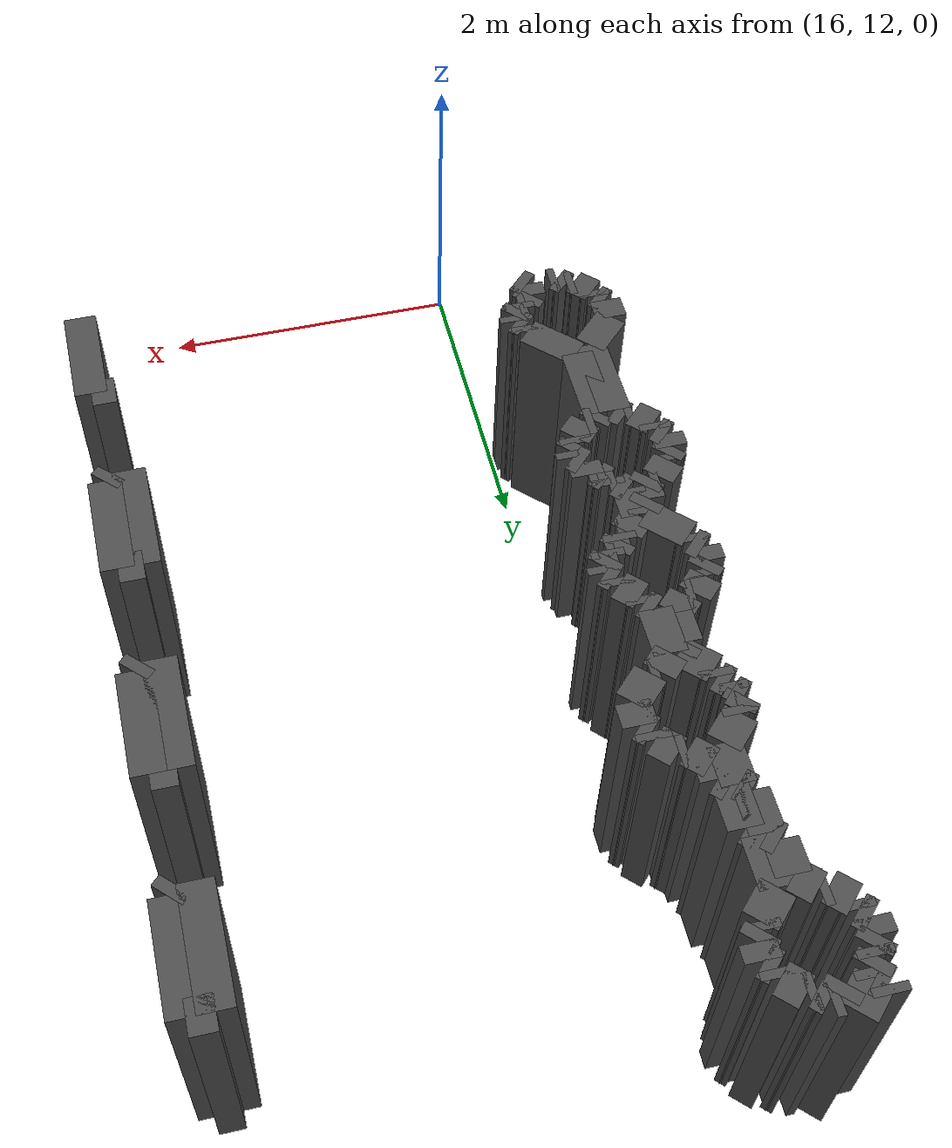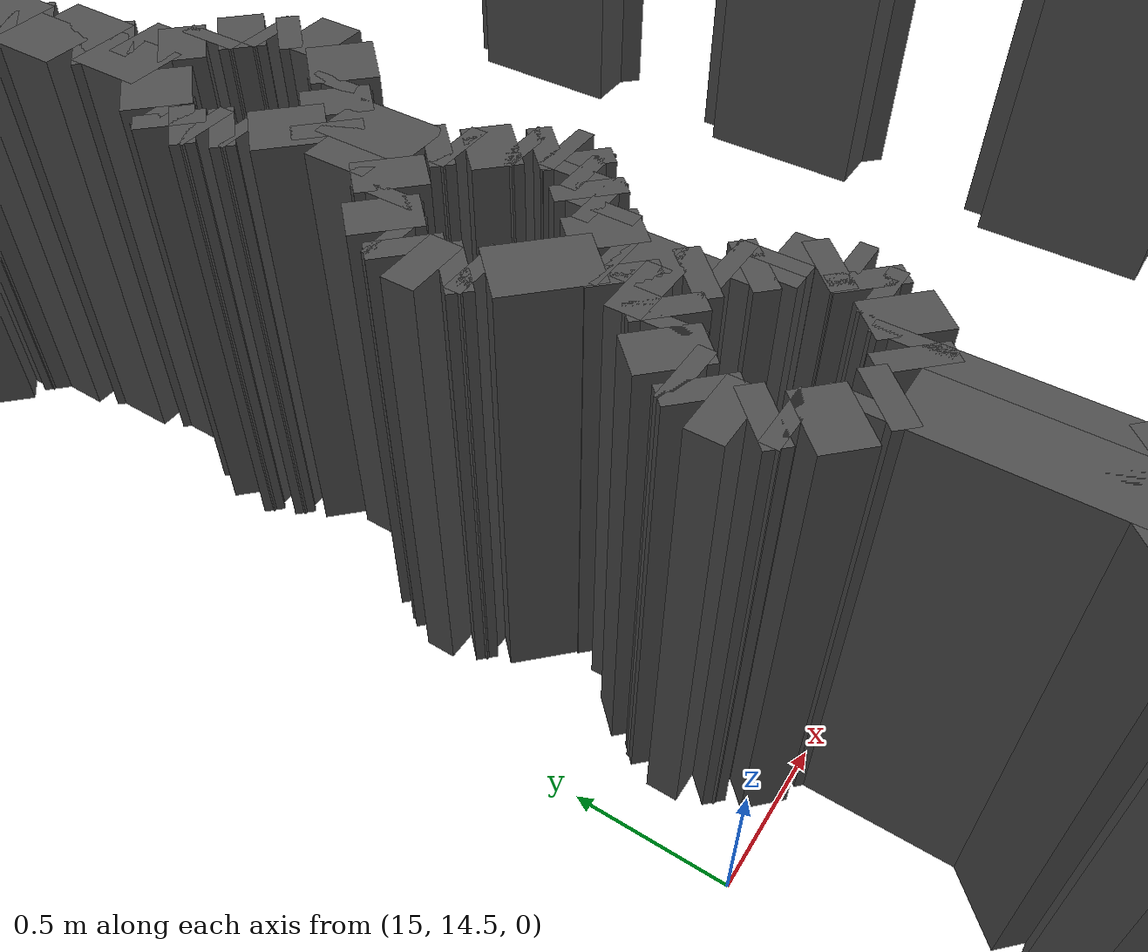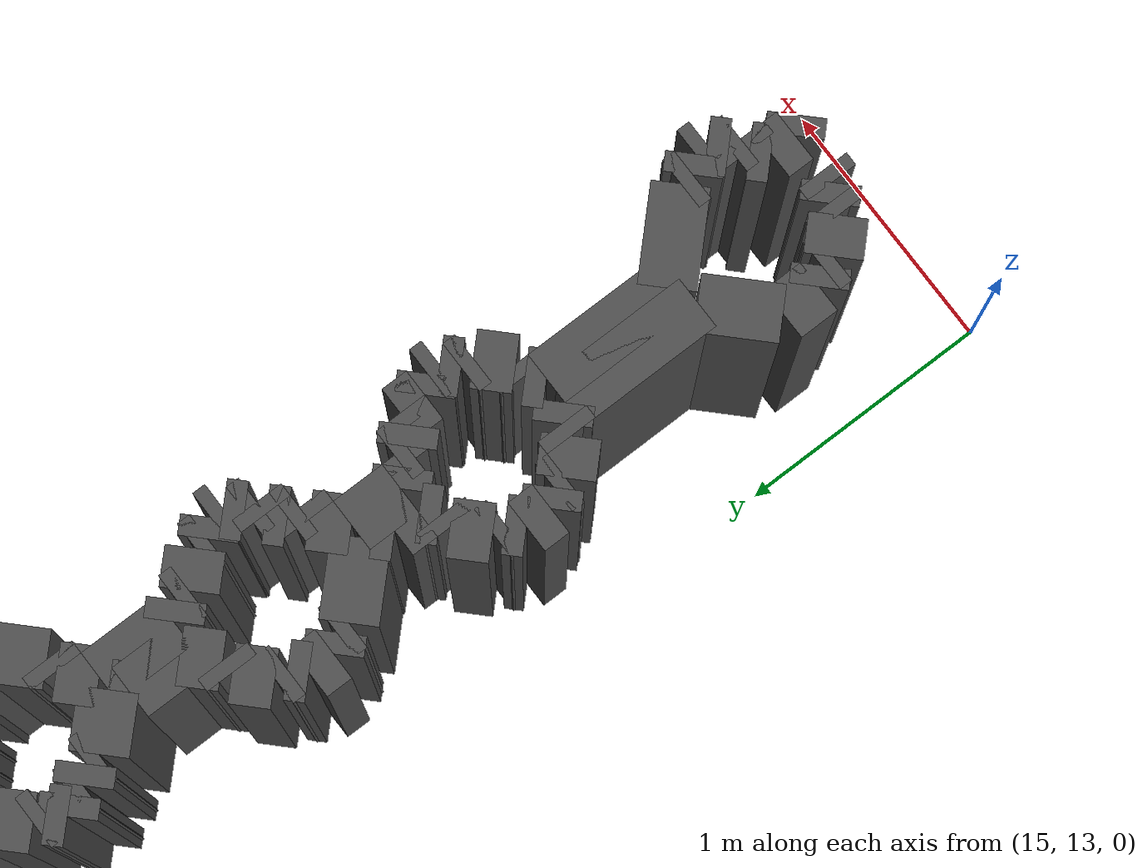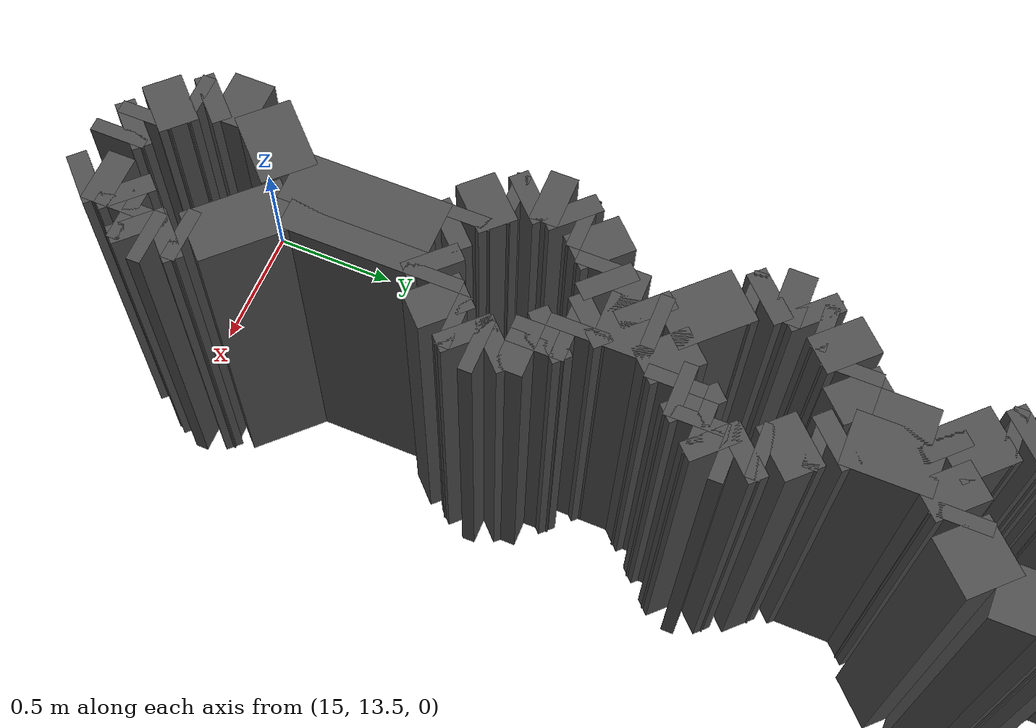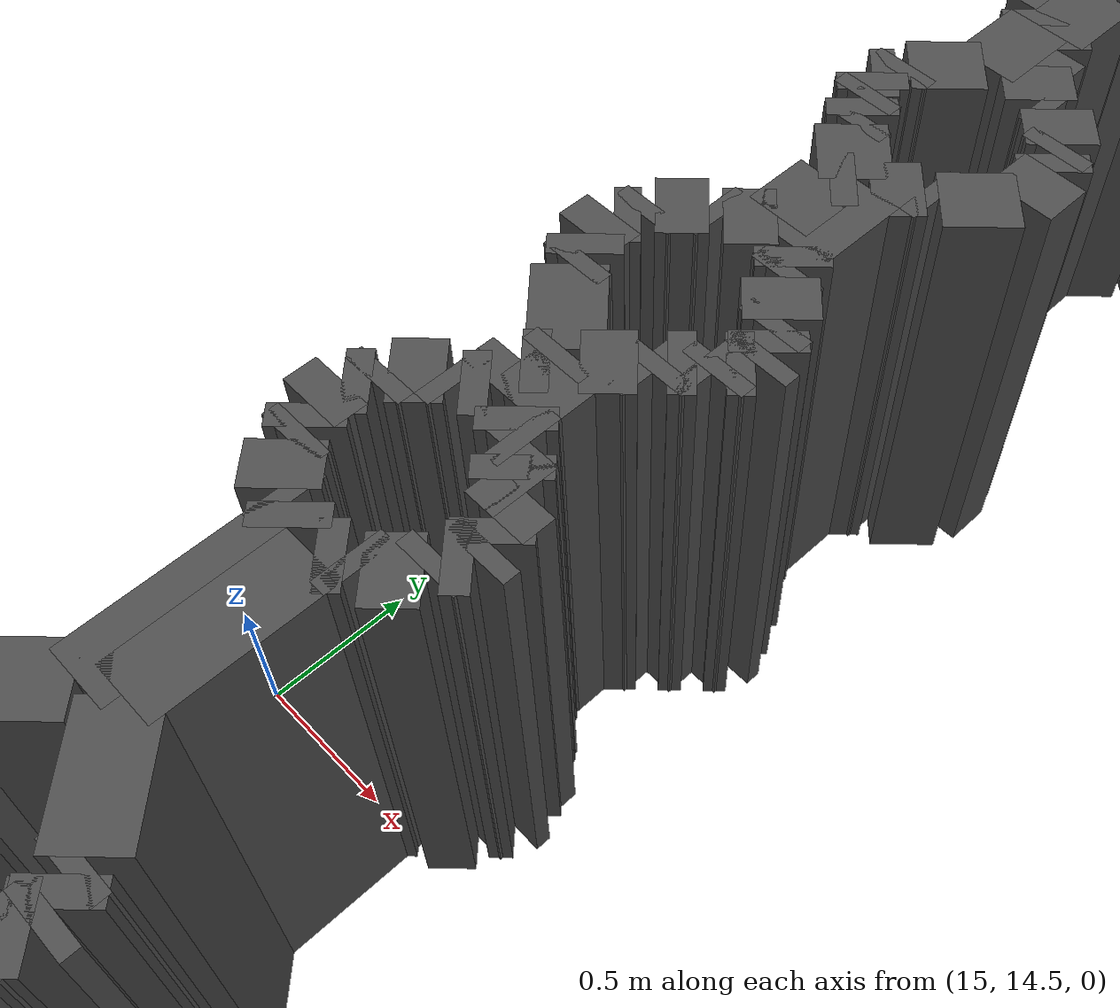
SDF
<sdf version="1.9">
 <model name="generated_walls">
  <static>true</static>
  <link name="wall_120_0">
   <pose>18.450 17.350 0.75 0 0 1.571</pose>
   <collision name="collision"><geometry><box><size>0.700 0.2 1.5</size></box></geometry></collision>
   <visual name="visual">
    <geometry><box><size>0.700 0.2 1.5</size></box></geometry>
    <material><ambient>0.3 0.3 0.3 1</ambient></material>
   </visual>
  </link>
  <link name="wall_120_1">
   <pose>18.525 17.700 0.75 0 0 0.000</pose>
   <collision name="collision"><geometry><box><size>0.150 0.2 1.5</size></box></geometry></collision>
   <visual name="visual">
    <geometry><box><size>0.150 0.2 1.5</size></box></geometry>
    <material><ambient>0.3 0.3 0.3 1</ambient></material>
   </visual>
  </link>
  <link name="wall_120_2">
   <pose>18.600 17.375 0.75 0 0 -1.571</pose>
   <collision name="collision"><geometry><box><size>0.650 0.2 1.5</size></box></geometry></collision>
   <visual name="visual">
    <geometry><box><size>0.650 0.2 1.5</size></box></geometry>
    <material><ambient>0.3 0.3 0.3 1</ambient></material>
   </visual>
  </link>
  <link name="wall_120_3">
   <pose>18.575 17.025 0.75 0 0 -2.356</pose>
   <collision name="collision"><geometry><box><size>0.071 0.2 1.5</size></box></geometry></collision>
   <visual name="visual">
    <geometry><box><size>0.071 0.2 1.5</size></box></geometry>
    <material><ambient>0.3 0.3 0.3 1</ambient></material>
   </visual>
  </link>
  <link name="wall_127_0">
   <pose>18.450 16.000 0.75 0 0 1.571</pose>
   <collision name="collision"><geometry><box><size>0.700 0.2 1.5</size></box></geometry></collision>
   <visual name="visual">
    <geometry><box><size>0.700 0.2 1.5</size></box></geometry>
    <material><ambient>0.3 0.3 0.3 1</ambient></material>
   </visual>
  </link>
  <link name="wall_127_1">
   <pose>18.525 16.350 0.75 0 0 0.000</pose>
   <collision name="collision"><geometry><box><size>0.150 0.2 1.5</size></box></geometry></collision>
   <visual name="visual">
    <geometry><box><size>0.150 0.2 1.5</size></box></geometry>
    <material><ambient>0.3 0.3 0.3 1</ambient></material>
   </visual>
  </link>
  <link name="wall_127_2">
   <pose>18.600 16.025 0.75 0 0 -1.571</pose>
   <collision name="collision"><geometry><box><size>0.650 0.2 1.5</size></box></geometry></collision>
   <visual name="visual">
    <geometry><box><size>0.650 0.2 1.5</size></box></geometry>
    <material><ambient>0.3 0.3 0.3 1</ambient></material>
   </visual>
  </link>
  <link name="wall_127_3">
   <pose>18.575 15.675 0.75 0 0 -2.356</pose>
   <collision name="collision"><geometry><box><size>0.071 0.2 1.5</size></box></geometry></collision>
   <visual name="visual">
    <geometry><box><size>0.071 0.2 1.5</size></box></geometry>
    <material><ambient>0.3 0.3 0.3 1</ambient></material>
   </visual>
  </link>
  <link name="wall_131_0">
   <pose>18.450 14.650 0.75 0 0 1.571</pose>
   <collision name="collision"><geometry><box><size>0.700 0.2 1.5</size></box></geometry></collision>
   <visual name="visual">
    <geometry><box><size>0.700 0.2 1.5</size></box></geometry>
    <material><ambient>0.3 0.3 0.3 1</ambient></material>
   </visual>
  </link>
  <link name="wall_131_1">
   <pose>18.525 15.000 0.75 0 0 0.000</pose>
   <collision name="collision"><geometry><box><size>0.150 0.2 1.5</size></box></geometry></collision>
   <visual name="visual">
    <geometry><box><size>0.150 0.2 1.5</size></box></geometry>
    <material><ambient>0.3 0.3 0.3 1</ambient></material>
   </visual>
  </link>
  <link name="wall_131_2">
   <pose>18.600 14.675 0.75 0 0 -1.571</pose>
   <collision name="collision"><geometry><box><size>0.650 0.2 1.5</size></box></geometry></collision>
   <visual name="visual">
    <geometry><box><size>0.650 0.2 1.5</size></box></geometry>
    <material><ambient>0.3 0.3 0.3 1</ambient></material>
   </visual>
  </link>
  <link name="wall_131_3">
   <pose>18.575 14.325 0.75 0 0 -2.356</pose>
   <collision name="collision"><geometry><box><size>0.071 0.2 1.5</size></box></geometry></collision>
   <visual name="visual">
    <geometry><box><size>0.071 0.2 1.5</size></box></geometry>
    <material><ambient>0.3 0.3 0.3 1</ambient></material>
   </visual>
  </link>
  <link name="wall_135_1">
   <pose>18.525 13.650 0.75 0 0 0.000</pose>
   <collision name="collision"><geometry><box><size>0.150 0.2 1.5</size></box></geometry></collision>
   <visual name="visual">
    <geometry><box><size>0.150 0.2 1.5</size></box></geometry>
    <material><ambient>0.3 0.3 0.3 1</ambient></material>
   </visual>
  </link>
  <link name="wall_135_2">
   <pose>18.600 13.325 0.75 0 0 -1.571</pose>
   <collision name="collision"><geometry><box><size>0.650 0.2 1.5</size></box></geometry></collision>
   <visual name="visual">
    <geometry><box><size>0.650 0.2 1.5</size></box></geometry>
    <material><ambient>0.3 0.3 0.3 1</ambient></material>
   </visual>
  </link>
  <link name="wall_161_1705">
   <pose>15.575 13.350 0.75 0 0 3.142</pose>
   <collision name="collision"><geometry><box><size>0.050 0.2 1.5</size></box></geometry></collision>
   <visual name="visual">
    <geometry><box><size>0.050 0.2 1.5</size></box></geometry>
    <material><ambient>0.3 0.3 0.3 1</ambient></material>
   </visual>
  </link>
  <link name="wall_161_1706">
   <pose>15.525 13.375 0.75 0 0 2.356</pose>
   <collision name="collision"><geometry><box><size>0.071 0.2 1.5</size></box></geometry></collision>
   <visual name="visual">
    <geometry><box><size>0.071 0.2 1.5</size></box></geometry>
    <material><ambient>0.3 0.3 0.3 1</ambient></material>
   </visual>
  </link>
  <link name="wall_161_1707">
   <pose>15.475 13.400 0.75 0 0 3.142</pose>
   <collision name="collision"><geometry><box><size>0.050 0.2 1.5</size></box></geometry></collision>
   <visual name="visual">
    <geometry><box><size>0.050 0.2 1.5</size></box></geometry>
    <material><ambient>0.3 0.3 0.3 1</ambient></material>
   </visual>
  </link>
  <link name="wall_161_1708">
   <pose>15.400 13.450 0.75 0 0 2.356</pose>
   <collision name="collision"><geometry><box><size>0.141 0.2 1.5</size></box></geometry></collision>
   <visual name="visual">
    <geometry><box><size>0.141 0.2 1.5</size></box></geometry>
    <material><ambient>0.3 0.3 0.3 1</ambient></material>
   </visual>
  </link>
  <link name="wall_161_1709">
   <pose>15.350 13.525 0.75 0 0 1.571</pose>
   <collision name="collision"><geometry><box><size>0.050 0.2 1.5</size></box></geometry></collision>
   <visual name="visual">
    <geometry><box><size>0.050 0.2 1.5</size></box></geometry>
    <material><ambient>0.3 0.3 0.3 1</ambient></material>
   </visual>
  </link>
  <link name="wall_161_1710">
   <pose>15.325 13.575 0.75 0 0 2.356</pose>
   <collision name="collision"><geometry><box><size>0.071 0.2 1.5</size></box></geometry></collision>
   <visual name="visual">
    <geometry><box><size>0.071 0.2 1.5</size></box></geometry>
    <material><ambient>0.3 0.3 0.3 1</ambient></material>
   </visual>
  </link>
  <link name="wall_161_1711">
   <pose>15.300 13.675 0.75 0 0 1.571</pose>
   <collision name="collision"><geometry><box><size>0.150 0.2 1.5</size></box></geometry></collision>
   <visual name="visual">
    <geometry><box><size>0.150 0.2 1.5</size></box></geometry>
    <material><ambient>0.3 0.3 0.3 1</ambient></material>
   </visual>
  </link>
  <link name="wall_161_1712">
   <pose>15.400 13.850 0.75 0 0 0.785</pose>
   <collision name="collision"><geometry><box><size>0.283 0.2 1.5</size></box></geometry></collision>
   <visual name="visual">
    <geometry><box><size>0.283 0.2 1.5</size></box></geometry>
    <material><ambient>0.3 0.3 0.3 1</ambient></material>
   </visual>
  </link>
  <link name="wall_161_1713">
   <pose>15.500 14.225 0.75 0 0 1.571</pose>
   <collision name="collision"><geometry><box><size>0.550 0.2 1.5</size></box></geometry></collision>
   <visual name="visual">
    <geometry><box><size>0.550 0.2 1.5</size></box></geometry>
    <material><ambient>0.3 0.3 0.3 1</ambient></material>
   </visual>
  </link>
  <link name="wall_161_1714">
   <pose>15.475 14.525 0.75 0 0 2.356</pose>
   <collision name="collision"><geometry><box><size>0.071 0.2 1.5</size></box></geometry></collision>
   <visual name="visual">
    <geometry><box><size>0.071 0.2 1.5</size></box></geometry>
    <material><ambient>0.3 0.3 0.3 1</ambient></material>
   </visual>
  </link>
  <link name="wall_161_1715">
   <pose>15.425 14.550 0.75 0 0 3.142</pose>
   <collision name="collision"><geometry><box><size>0.050 0.2 1.5</size></box></geometry></collision>
   <visual name="visual">
    <geometry><box><size>0.050 0.2 1.5</size></box></geometry>
    <material><ambient>0.3 0.3 0.3 1</ambient></material>
   </visual>
  </link>
  <link name="wall_161_1716">
   <pose>15.350 14.600 0.75 0 0 2.356</pose>
   <collision name="collision"><geometry><box><size>0.141 0.2 1.5</size></box></geometry></collision>
   <visual name="visual">
    <geometry><box><size>0.141 0.2 1.5</size></box></geometry>
    <material><ambient>0.3 0.3 0.3 1</ambient></material>
   </visual>
  </link>
  <link name="wall_161_1717">
   <pose>15.300 14.675 0.75 0 0 1.571</pose>
   <collision name="collision"><geometry><box><size>0.050 0.2 1.5</size></box></geometry></collision>
   <visual name="visual">
    <geometry><box><size>0.050 0.2 1.5</size></box></geometry>
    <material><ambient>0.3 0.3 0.3 1</ambient></material>
   </visual>
  </link>
  <link name="wall_161_1718">
   <pose>15.275 14.725 0.75 0 0 2.356</pose>
   <collision name="collision"><geometry><box><size>0.071 0.2 1.5</size></box></geometry></collision>
   <visual name="visual">
    <geometry><box><size>0.071 0.2 1.5</size></box></geometry>
    <material><ambient>0.3 0.3 0.3 1</ambient></material>
   </visual>
  </link>
  <link name="wall_161_1719">
   <pose>15.250 14.800 0.75 0 0 1.571</pose>
   <collision name="collision"><geometry><box><size>0.100 0.2 1.5</size></box></geometry></collision>
   <visual name="visual">
    <geometry><box><size>0.100 0.2 1.5</size></box></geometry>
    <material><ambient>0.3 0.3 0.3 1</ambient></material>
   </visual>
  </link>
  <link name="wall_161_1720">
   <pose>15.275 14.875 0.75 0 0 0.785</pose>
   <collision name="collision"><geometry><box><size>0.071 0.2 1.5</size></box></geometry></collision>
   <visual name="visual">
    <geometry><box><size>0.071 0.2 1.5</size></box></geometry>
    <material><ambient>0.3 0.3 0.3 1</ambient></material>
   </visual>
  </link>
  <link name="wall_161_1721">
   <pose>15.300 14.925 0.75 0 0 1.571</pose>
   <collision name="collision"><geometry><box><size>0.050 0.2 1.5</size></box></geometry></collision>
   <visual name="visual">
    <geometry><box><size>0.050 0.2 1.5</size></box></geometry>
    <material><ambient>0.3 0.3 0.3 1</ambient></material>
   </visual>
  </link>
  <link name="wall_161_1722">
   <pose>15.350 15.000 0.75 0 0 0.785</pose>
   <collision name="collision"><geometry><box><size>0.141 0.2 1.5</size></box></geometry></collision>
   <visual name="visual">
    <geometry><box><size>0.141 0.2 1.5</size></box></geometry>
    <material><ambient>0.3 0.3 0.3 1</ambient></material>
   </visual>
  </link>
  <link name="wall_161_1723">
   <pose>15.425 15.050 0.75 0 0 0.000</pose>
   <collision name="collision"><geometry><box><size>0.050 0.2 1.5</size></box></geometry></collision>
   <visual name="visual">
    <geometry><box><size>0.050 0.2 1.5</size></box></geometry>
    <material><ambient>0.3 0.3 0.3 1</ambient></material>
   </visual>
  </link>
  <link name="wall_161_1724">
   <pose>15.475 15.075 0.75 0 0 0.785</pose>
   <collision name="collision"><geometry><box><size>0.071 0.2 1.5</size></box></geometry></collision>
   <visual name="visual">
    <geometry><box><size>0.071 0.2 1.5</size></box></geometry>
    <material><ambient>0.3 0.3 0.3 1</ambient></material>
   </visual>
  </link>
  <link name="wall_161_1725">
   <pose>15.500 15.150 0.75 0 0 1.571</pose>
   <collision name="collision"><geometry><box><size>0.100 0.2 1.5</size></box></geometry></collision>
   <visual name="visual">
    <geometry><box><size>0.100 0.2 1.5</size></box></geometry>
    <material><ambient>0.3 0.3 0.3 1</ambient></material>
   </visual>
  </link>
  <link name="wall_161_1726">
   <pose>15.525 15.225 0.75 0 0 0.785</pose>
   <collision name="collision"><geometry><box><size>0.071 0.2 1.5</size></box></geometry></collision>
   <visual name="visual">
    <geometry><box><size>0.071 0.2 1.5</size></box></geometry>
    <material><ambient>0.3 0.3 0.3 1</ambient></material>
   </visual>
  </link>
  <link name="wall_161_1727">
   <pose>15.550 15.275 0.75 0 0 1.571</pose>
   <collision name="collision"><geometry><box><size>0.050 0.2 1.5</size></box></geometry></collision>
   <visual name="visual">
    <geometry><box><size>0.050 0.2 1.5</size></box></geometry>
    <material><ambient>0.3 0.3 0.3 1</ambient></material>
   </visual>
  </link>
  <link name="wall_161_1728">
   <pose>15.450 15.400 0.75 0 0 2.356</pose>
   <collision name="collision"><geometry><box><size>0.283 0.2 1.5</size></box></geometry></collision>
   <visual name="visual">
    <geometry><box><size>0.283 0.2 1.5</size></box></geometry>
    <material><ambient>0.3 0.3 0.3 1</ambient></material>
   </visual>
  </link>
  <link name="wall_161_1729">
   <pose>15.350 15.525 0.75 0 0 1.571</pose>
   <collision name="collision"><geometry><box><size>0.050 0.2 1.5</size></box></geometry></collision>
   <visual name="visual">
    <geometry><box><size>0.050 0.2 1.5</size></box></geometry>
    <material><ambient>0.3 0.3 0.3 1</ambient></material>
   </visual>
  </link>
  <link name="wall_161_1730">
   <pose>15.325 15.575 0.75 0 0 2.356</pose>
   <collision name="collision"><geometry><box><size>0.071 0.2 1.5</size></box></geometry></collision>
   <visual name="visual">
    <geometry><box><size>0.071 0.2 1.5</size></box></geometry>
    <material><ambient>0.3 0.3 0.3 1</ambient></material>
   </visual>
  </link>
  <link name="wall_161_1731">
   <pose>15.300 15.650 0.75 0 0 1.571</pose>
   <collision name="collision"><geometry><box><size>0.100 0.2 1.5</size></box></geometry></collision>
   <visual name="visual">
    <geometry><box><size>0.100 0.2 1.5</size></box></geometry>
    <material><ambient>0.3 0.3 0.3 1</ambient></material>
   </visual>
  </link>
  <link name="wall_161_1732">
   <pose>15.325 15.725 0.75 0 0 0.785</pose>
   <collision name="collision"><geometry><box><size>0.071 0.2 1.5</size></box></geometry></collision>
   <visual name="visual">
    <geometry><box><size>0.071 0.2 1.5</size></box></geometry>
    <material><ambient>0.3 0.3 0.3 1</ambient></material>
   </visual>
  </link>
  <link name="wall_161_1733">
   <pose>15.350 15.775 0.75 0 0 1.571</pose>
   <collision name="collision"><geometry><box><size>0.050 0.2 1.5</size></box></geometry></collision>
   <visual name="visual">
    <geometry><box><size>0.050 0.2 1.5</size></box></geometry>
    <material><ambient>0.3 0.3 0.3 1</ambient></material>
   </visual>
  </link>
  <link name="wall_161_1734">
   <pose>15.400 15.850 0.75 0 0 0.785</pose>
   <collision name="collision"><geometry><box><size>0.141 0.2 1.5</size></box></geometry></collision>
   <visual name="visual">
    <geometry><box><size>0.141 0.2 1.5</size></box></geometry>
    <material><ambient>0.3 0.3 0.3 1</ambient></material>
   </visual>
  </link>
  <link name="wall_161_1735">
   <pose>15.475 15.900 0.75 0 0 0.000</pose>
   <collision name="collision"><geometry><box><size>0.050 0.2 1.5</size></box></geometry></collision>
   <visual name="visual">
    <geometry><box><size>0.050 0.2 1.5</size></box></geometry>
    <material><ambient>0.3 0.3 0.3 1</ambient></material>
   </visual>
  </link>
  <link name="wall_161_1736">
   <pose>15.550 15.950 0.75 0 0 0.785</pose>
   <collision name="collision"><geometry><box><size>0.141 0.2 1.5</size></box></geometry></collision>
   <visual name="visual">
    <geometry><box><size>0.141 0.2 1.5</size></box></geometry>
    <material><ambient>0.3 0.3 0.3 1</ambient></material>
   </visual>
  </link>
  <link name="wall_161_1737">
   <pose>15.600 16.100 0.75 0 0 1.571</pose>
   <collision name="collision"><geometry><box><size>0.200 0.2 1.5</size></box></geometry></collision>
   <visual name="visual">
    <geometry><box><size>0.200 0.2 1.5</size></box></geometry>
    <material><ambient>0.3 0.3 0.3 1</ambient></material>
   </visual>
  </link>
  <link name="wall_161_1738">
   <pose>15.625 16.225 0.75 0 0 0.785</pose>
   <collision name="collision"><geometry><box><size>0.071 0.2 1.5</size></box></geometry></collision>
   <visual name="visual">
    <geometry><box><size>0.071 0.2 1.5</size></box></geometry>
    <material><ambient>0.3 0.3 0.3 1</ambient></material>
   </visual>
  </link>
  <link name="wall_161_1739">
   <pose>15.575 16.325 0.75 0 0 2.356</pose>
   <collision name="collision"><geometry><box><size>0.212 0.2 1.5</size></box></geometry></collision>
   <visual name="visual">
    <geometry><box><size>0.212 0.2 1.5</size></box></geometry>
    <material><ambient>0.3 0.3 0.3 1</ambient></material>
   </visual>
  </link>
  <link name="wall_161_1740">
   <pose>15.500 16.425 0.75 0 0 1.571</pose>
   <collision name="collision"><geometry><box><size>0.050 0.2 1.5</size></box></geometry></collision>
   <visual name="visual">
    <geometry><box><size>0.050 0.2 1.5</size></box></geometry>
    <material><ambient>0.3 0.3 0.3 1</ambient></material>
   </visual>
  </link>
  <link name="wall_161_1741">
   <pose>15.475 16.475 0.75 0 0 2.356</pose>
   <collision name="collision"><geometry><box><size>0.071 0.2 1.5</size></box></geometry></collision>
   <visual name="visual">
    <geometry><box><size>0.071 0.2 1.5</size></box></geometry>
    <material><ambient>0.3 0.3 0.3 1</ambient></material>
   </visual>
  </link>
  <link name="wall_161_1742">
   <pose>15.450 16.525 0.75 0 0 1.571</pose>
   <collision name="collision"><geometry><box><size>0.050 0.2 1.5</size></box></geometry></collision>
   <visual name="visual">
    <geometry><box><size>0.050 0.2 1.5</size></box></geometry>
    <material><ambient>0.3 0.3 0.3 1</ambient></material>
   </visual>
  </link>
  <link name="wall_161_1743">
   <pose>15.425 16.575 0.75 0 0 2.356</pose>
   <collision name="collision"><geometry><box><size>0.071 0.2 1.5</size></box></geometry></collision>
   <visual name="visual">
    <geometry><box><size>0.071 0.2 1.5</size></box></geometry>
    <material><ambient>0.3 0.3 0.3 1</ambient></material>
   </visual>
  </link>
  <link name="wall_161_1744">
   <pose>15.425 16.625 0.75 0 0 0.785</pose>
   <collision name="collision"><geometry><box><size>0.071 0.2 1.5</size></box></geometry></collision>
   <visual name="visual">
    <geometry><box><size>0.071 0.2 1.5</size></box></geometry>
    <material><ambient>0.3 0.3 0.3 1</ambient></material>
   </visual>
  </link>
  <link name="wall_161_1745">
   <pose>15.450 16.675 0.75 0 0 1.571</pose>
   <collision name="collision"><geometry><box><size>0.050 0.2 1.5</size></box></geometry></collision>
   <visual name="visual">
    <geometry><box><size>0.050 0.2 1.5</size></box></geometry>
    <material><ambient>0.3 0.3 0.3 1</ambient></material>
   </visual>
  </link>
  <link name="wall_161_1746">
   <pose>15.525 16.775 0.75 0 0 0.785</pose>
   <collision name="collision"><geometry><box><size>0.212 0.2 1.5</size></box></geometry></collision>
   <visual name="visual">
    <geometry><box><size>0.212 0.2 1.5</size></box></geometry>
    <material><ambient>0.3 0.3 0.3 1</ambient></material>
   </visual>
  </link>
  <link name="wall_161_1747">
   <pose>15.600 16.975 0.75 0 0 1.571</pose>
   <collision name="collision"><geometry><box><size>0.250 0.2 1.5</size></box></geometry></collision>
   <visual name="visual">
    <geometry><box><size>0.250 0.2 1.5</size></box></geometry>
    <material><ambient>0.3 0.3 0.3 1</ambient></material>
   </visual>
  </link>
  <link name="wall_161_1748">
   <pose>15.575 17.125 0.75 0 0 2.356</pose>
   <collision name="collision"><geometry><box><size>0.071 0.2 1.5</size></box></geometry></collision>
   <visual name="visual">
    <geometry><box><size>0.071 0.2 1.5</size></box></geometry>
    <material><ambient>0.3 0.3 0.3 1</ambient></material>
   </visual>
  </link>
  <link name="wall_161_1749">
   <pose>15.550 17.275 0.75 0 0 1.571</pose>
   <collision name="collision"><geometry><box><size>0.250 0.2 1.5</size></box></geometry></collision>
   <visual name="visual">
    <geometry><box><size>0.250 0.2 1.5</size></box></geometry>
    <material><ambient>0.3 0.3 0.3 1</ambient></material>
   </visual>
  </link>
  <link name="wall_161_1750">
   <pose>15.525 17.425 0.75 0 0 2.356</pose>
   <collision name="collision"><geometry><box><size>0.071 0.2 1.5</size></box></geometry></collision>
   <visual name="visual">
    <geometry><box><size>0.071 0.2 1.5</size></box></geometry>
    <material><ambient>0.3 0.3 0.3 1</ambient></material>
   </visual>
  </link>
  <link name="wall_161_1751">
   <pose>15.500 17.550 0.75 0 0 1.571</pose>
   <collision name="collision"><geometry><box><size>0.200 0.2 1.5</size></box></geometry></collision>
   <visual name="visual">
    <geometry><box><size>0.200 0.2 1.5</size></box></geometry>
    <material><ambient>0.3 0.3 0.3 1</ambient></material>
   </visual>
  </link>
  <link name="wall_161_1752">
   <pose>15.450 17.700 0.75 0 0 2.356</pose>
   <collision name="collision"><geometry><box><size>0.141 0.2 1.5</size></box></geometry></collision>
   <visual name="visual">
    <geometry><box><size>0.141 0.2 1.5</size></box></geometry>
    <material><ambient>0.3 0.3 0.3 1</ambient></material>
   </visual>
  </link>
  <link name="wall_161_1753">
   <pose>15.375 17.750 0.75 0 0 3.142</pose>
   <collision name="collision"><geometry><box><size>0.050 0.2 1.5</size></box></geometry></collision>
   <visual name="visual">
    <geometry><box><size>0.050 0.2 1.5</size></box></geometry>
    <material><ambient>0.3 0.3 0.3 1</ambient></material>
   </visual>
  </link>
  <link name="wall_161_1754">
   <pose>15.300 17.800 0.75 0 0 2.356</pose>
   <collision name="collision"><geometry><box><size>0.141 0.2 1.5</size></box></geometry></collision>
   <visual name="visual">
    <geometry><box><size>0.141 0.2 1.5</size></box></geometry>
    <material><ambient>0.3 0.3 0.3 1</ambient></material>
   </visual>
  </link>
  <link name="wall_161_1755">
   <pose>15.250 17.875 0.75 0 0 1.571</pose>
   <collision name="collision"><geometry><box><size>0.050 0.2 1.5</size></box></geometry></collision>
   <visual name="visual">
    <geometry><box><size>0.050 0.2 1.5</size></box></geometry>
    <material><ambient>0.3 0.3 0.3 1</ambient></material>
   </visual>
  </link>
  <link name="wall_161_1756">
   <pose>15.225 17.925 0.75 0 0 2.356</pose>
   <collision name="collision"><geometry><box><size>0.071 0.2 1.5</size></box></geometry></collision>
   <visual name="visual">
    <geometry><box><size>0.071 0.2 1.5</size></box></geometry>
    <material><ambient>0.3 0.3 0.3 1</ambient></material>
   </visual>
  </link>
  <link name="wall_161_1757">
   <pose>15.200 18.000 0.75 0 0 1.571</pose>
   <collision name="collision"><geometry><box><size>0.100 0.2 1.5</size></box></geometry></collision>
   <visual name="visual">
    <geometry><box><size>0.100 0.2 1.5</size></box></geometry>
    <material><ambient>0.3 0.3 0.3 1</ambient></material>
   </visual>
  </link>
  <link name="wall_161_1758">
   <pose>15.225 18.075 0.75 0 0 0.785</pose>
   <collision name="collision"><geometry><box><size>0.071 0.2 1.5</size></box></geometry></collision>
   <visual name="visual">
    <geometry><box><size>0.071 0.2 1.5</size></box></geometry>
    <material><ambient>0.3 0.3 0.3 1</ambient></material>
   </visual>
  </link>
  <link name="wall_161_1759">
   <pose>15.250 18.125 0.75 0 0 1.571</pose>
   <collision name="collision"><geometry><box><size>0.050 0.2 1.5</size></box></geometry></collision>
   <visual name="visual">
    <geometry><box><size>0.050 0.2 1.5</size></box></geometry>
    <material><ambient>0.3 0.3 0.3 1</ambient></material>
   </visual>
  </link>
  <link name="wall_161_1760">
   <pose>15.275 18.175 0.75 0 0 0.785</pose>
   <collision name="collision"><geometry><box><size>0.071 0.2 1.5</size></box></geometry></collision>
   <visual name="visual">
    <geometry><box><size>0.071 0.2 1.5</size></box></geometry>
    <material><ambient>0.3 0.3 0.3 1</ambient></material>
   </visual>
  </link>
  <link name="wall_161_1761">
   <pose>15.300 18.225 0.75 0 0 1.571</pose>
   <collision name="collision"><geometry><box><size>0.050 0.2 1.5</size></box></geometry></collision>
   <visual name="visual">
    <geometry><box><size>0.050 0.2 1.5</size></box></geometry>
    <material><ambient>0.3 0.3 0.3 1</ambient></material>
   </visual>
  </link>
  <link name="wall_161_1762">
   <pose>15.275 18.275 0.75 0 0 2.356</pose>
   <collision name="collision"><geometry><box><size>0.071 0.2 1.5</size></box></geometry></collision>
   <visual name="visual">
    <geometry><box><size>0.071 0.2 1.5</size></box></geometry>
    <material><ambient>0.3 0.3 0.3 1</ambient></material>
   </visual>
  </link>
  <link name="wall_161_1763">
   <pose>15.250 18.325 0.75 0 0 1.571</pose>
   <collision name="collision"><geometry><box><size>0.050 0.2 1.5</size></box></geometry></collision>
   <visual name="visual">
    <geometry><box><size>0.050 0.2 1.5</size></box></geometry>
    <material><ambient>0.3 0.3 0.3 1</ambient></material>
   </visual>
  </link>
  <link name="wall_161_2395">
   <pose>15.375 18.325 0.75 0 0 -0.785</pose>
   <collision name="collision"><geometry><box><size>0.212 0.2 1.5</size></box></geometry></collision>
   <visual name="visual">
    <geometry><box><size>0.212 0.2 1.5</size></box></geometry>
    <material><ambient>0.3 0.3 0.3 1</ambient></material>
   </visual>
  </link>
  <link name="wall_161_2396">
   <pose>15.475 18.275 0.75 0 0 0.785</pose>
   <collision name="collision"><geometry><box><size>0.071 0.2 1.5</size></box></geometry></collision>
   <visual name="visual">
    <geometry><box><size>0.071 0.2 1.5</size></box></geometry>
    <material><ambient>0.3 0.3 0.3 1</ambient></material>
   </visual>
  </link>
  <link name="wall_161_2397">
   <pose>15.525 18.300 0.75 0 0 0.000</pose>
   <collision name="collision"><geometry><box><size>0.050 0.2 1.5</size></box></geometry></collision>
   <visual name="visual">
    <geometry><box><size>0.050 0.2 1.5</size></box></geometry>
    <material><ambient>0.3 0.3 0.3 1</ambient></material>
   </visual>
  </link>
  <link name="wall_161_2398">
   <pose>15.575 18.275 0.75 0 0 -0.785</pose>
   <collision name="collision"><geometry><box><size>0.071 0.2 1.5</size></box></geometry></collision>
   <visual name="visual">
    <geometry><box><size>0.071 0.2 1.5</size></box></geometry>
    <material><ambient>0.3 0.3 0.3 1</ambient></material>
   </visual>
  </link>
  <link name="wall_161_2399">
   <pose>15.625 18.250 0.75 0 0 0.000</pose>
   <collision name="collision"><geometry><box><size>0.050 0.2 1.5</size></box></geometry></collision>
   <visual name="visual">
    <geometry><box><size>0.050 0.2 1.5</size></box></geometry>
    <material><ambient>0.3 0.3 0.3 1</ambient></material>
   </visual>
  </link>
  <link name="wall_161_2400">
   <pose>15.700 18.200 0.75 0 0 -0.785</pose>
   <collision name="collision"><geometry><box><size>0.141 0.2 1.5</size></box></geometry></collision>
   <visual name="visual">
    <geometry><box><size>0.141 0.2 1.5</size></box></geometry>
    <material><ambient>0.3 0.3 0.3 1</ambient></material>
   </visual>
  </link>
  <link name="wall_161_2401">
   <pose>15.750 18.125 0.75 0 0 -1.571</pose>
   <collision name="collision"><geometry><box><size>0.050 0.2 1.5</size></box></geometry></collision>
   <visual name="visual">
    <geometry><box><size>0.050 0.2 1.5</size></box></geometry>
    <material><ambient>0.3 0.3 0.3 1</ambient></material>
   </visual>
  </link>
  <link name="wall_161_2402">
   <pose>15.775 18.075 0.75 0 0 -0.785</pose>
   <collision name="collision"><geometry><box><size>0.071 0.2 1.5</size></box></geometry></collision>
   <visual name="visual">
    <geometry><box><size>0.071 0.2 1.5</size></box></geometry>
    <material><ambient>0.3 0.3 0.3 1</ambient></material>
   </visual>
  </link>
  <link name="wall_161_2403">
   <pose>15.800 18.000 0.75 0 0 -1.571</pose>
   <collision name="collision"><geometry><box><size>0.100 0.2 1.5</size></box></geometry></collision>
   <visual name="visual">
    <geometry><box><size>0.100 0.2 1.5</size></box></geometry>
    <material><ambient>0.3 0.3 0.3 1</ambient></material>
   </visual>
  </link>
  <link name="wall_161_2404">
   <pose>15.775 17.925 0.75 0 0 -2.356</pose>
   <collision name="collision"><geometry><box><size>0.071 0.2 1.5</size></box></geometry></collision>
   <visual name="visual">
    <geometry><box><size>0.071 0.2 1.5</size></box></geometry>
    <material><ambient>0.3 0.3 0.3 1</ambient></material>
   </visual>
  </link>
  <link name="wall_161_2405">
   <pose>15.750 17.875 0.75 0 0 -1.571</pose>
   <collision name="collision"><geometry><box><size>0.050 0.2 1.5</size></box></geometry></collision>
   <visual name="visual">
    <geometry><box><size>0.050 0.2 1.5</size></box></geometry>
    <material><ambient>0.3 0.3 0.3 1</ambient></material>
   </visual>
  </link>
  <link name="wall_161_2406">
   <pose>15.675 17.775 0.75 0 0 -2.356</pose>
   <collision name="collision"><geometry><box><size>0.212 0.2 1.5</size></box></geometry></collision>
   <visual name="visual">
    <geometry><box><size>0.212 0.2 1.5</size></box></geometry>
    <material><ambient>0.3 0.3 0.3 1</ambient></material>
   </visual>
  </link>
  <link name="wall_161_2407">
   <pose>15.600 17.550 0.75 0 0 -1.571</pose>
   <collision name="collision"><geometry><box><size>0.300 0.2 1.5</size></box></geometry></collision>
   <visual name="visual">
    <geometry><box><size>0.300 0.2 1.5</size></box></geometry>
    <material><ambient>0.3 0.3 0.3 1</ambient></material>
   </visual>
  </link>
  <link name="wall_161_2408">
   <pose>15.625 17.375 0.75 0 0 -0.785</pose>
   <collision name="collision"><geometry><box><size>0.071 0.2 1.5</size></box></geometry></collision>
   <visual name="visual">
    <geometry><box><size>0.071 0.2 1.5</size></box></geometry>
    <material><ambient>0.3 0.3 0.3 1</ambient></material>
   </visual>
  </link>
  <link name="wall_161_2409">
   <pose>15.650 17.225 0.75 0 0 -1.571</pose>
   <collision name="collision"><geometry><box><size>0.250 0.2 1.5</size></box></geometry></collision>
   <visual name="visual">
    <geometry><box><size>0.250 0.2 1.5</size></box></geometry>
    <material><ambient>0.3 0.3 0.3 1</ambient></material>
   </visual>
  </link>
  <link name="wall_161_2410">
   <pose>15.675 17.075 0.75 0 0 -0.785</pose>
   <collision name="collision"><geometry><box><size>0.071 0.2 1.5</size></box></geometry></collision>
   <visual name="visual">
    <geometry><box><size>0.071 0.2 1.5</size></box></geometry>
    <material><ambient>0.3 0.3 0.3 1</ambient></material>
   </visual>
  </link>
  <link name="wall_161_2411">
   <pose>15.700 17.000 0.75 0 0 -1.571</pose>
   <collision name="collision"><geometry><box><size>0.100 0.2 1.5</size></box></geometry></collision>
   <visual name="visual">
    <geometry><box><size>0.100 0.2 1.5</size></box></geometry>
    <material><ambient>0.3 0.3 0.3 1</ambient></material>
   </visual>
  </link>
  <link name="wall_161_2412">
   <pose>15.750 16.900 0.75 0 0 -0.785</pose>
   <collision name="collision"><geometry><box><size>0.141 0.2 1.5</size></box></geometry></collision>
   <visual name="visual">
    <geometry><box><size>0.141 0.2 1.5</size></box></geometry>
    <material><ambient>0.3 0.3 0.3 1</ambient></material>
   </visual>
  </link>
  <link name="wall_161_2413">
   <pose>15.825 16.850 0.75 0 0 0.000</pose>
   <collision name="collision"><geometry><box><size>0.050 0.2 1.5</size></box></geometry></collision>
   <visual name="visual">
    <geometry><box><size>0.050 0.2 1.5</size></box></geometry>
    <material><ambient>0.3 0.3 0.3 1</ambient></material>
   </visual>
  </link>
  <link name="wall_161_2414">
   <pose>15.900 16.800 0.75 0 0 -0.785</pose>
   <collision name="collision"><geometry><box><size>0.141 0.2 1.5</size></box></geometry></collision>
   <visual name="visual">
    <geometry><box><size>0.141 0.2 1.5</size></box></geometry>
    <material><ambient>0.3 0.3 0.3 1</ambient></material>
   </visual>
  </link>
  <link name="wall_161_2415">
   <pose>15.950 16.725 0.75 0 0 -1.571</pose>
   <collision name="collision"><geometry><box><size>0.050 0.2 1.5</size></box></geometry></collision>
   <visual name="visual">
    <geometry><box><size>0.050 0.2 1.5</size></box></geometry>
    <material><ambient>0.3 0.3 0.3 1</ambient></material>
   </visual>
  </link>
  <link name="wall_161_2416">
   <pose>15.975 16.675 0.75 0 0 -0.785</pose>
   <collision name="collision"><geometry><box><size>0.071 0.2 1.5</size></box></geometry></collision>
   <visual name="visual">
    <geometry><box><size>0.071 0.2 1.5</size></box></geometry>
    <material><ambient>0.3 0.3 0.3 1</ambient></material>
   </visual>
  </link>
  <link name="wall_161_2417">
   <pose>16.000 16.575 0.75 0 0 -1.571</pose>
   <collision name="collision"><geometry><box><size>0.150 0.2 1.5</size></box></geometry></collision>
   <visual name="visual">
    <geometry><box><size>0.150 0.2 1.5</size></box></geometry>
    <material><ambient>0.3 0.3 0.3 1</ambient></material>
   </visual>
  </link>
  <link name="wall_161_2418">
   <pose>15.925 16.425 0.75 0 0 -2.356</pose>
   <collision name="collision"><geometry><box><size>0.212 0.2 1.5</size></box></geometry></collision>
   <visual name="visual">
    <geometry><box><size>0.212 0.2 1.5</size></box></geometry>
    <material><ambient>0.3 0.3 0.3 1</ambient></material>
   </visual>
  </link>
  <link name="wall_161_2419">
   <pose>15.825 16.350 0.75 0 0 3.142</pose>
   <collision name="collision"><geometry><box><size>0.050 0.2 1.5</size></box></geometry></collision>
   <visual name="visual">
    <geometry><box><size>0.050 0.2 1.5</size></box></geometry>
    <material><ambient>0.3 0.3 0.3 1</ambient></material>
   </visual>
  </link>
  <link name="wall_161_2420">
   <pose>15.750 16.300 0.75 0 0 -2.356</pose>
   <collision name="collision"><geometry><box><size>0.141 0.2 1.5</size></box></geometry></collision>
   <visual name="visual">
    <geometry><box><size>0.141 0.2 1.5</size></box></geometry>
    <material><ambient>0.3 0.3 0.3 1</ambient></material>
   </visual>
  </link>
  <link name="wall_161_2421">
   <pose>15.700 16.100 0.75 0 0 -1.571</pose>
   <collision name="collision"><geometry><box><size>0.300 0.2 1.5</size></box></geometry></collision>
   <visual name="visual">
    <geometry><box><size>0.300 0.2 1.5</size></box></geometry>
    <material><ambient>0.3 0.3 0.3 1</ambient></material>
   </visual>
  </link>
  <link name="wall_161_2422">
   <pose>15.725 15.925 0.75 0 0 -0.785</pose>
   <collision name="collision"><geometry><box><size>0.071 0.2 1.5</size></box></geometry></collision>
   <visual name="visual">
    <geometry><box><size>0.071 0.2 1.5</size></box></geometry>
    <material><ambient>0.3 0.3 0.3 1</ambient></material>
   </visual>
  </link>
  <link name="wall_161_2423">
   <pose>15.750 15.875 0.75 0 0 -1.571</pose>
   <collision name="collision"><geometry><box><size>0.050 0.2 1.5</size></box></geometry></collision>
   <visual name="visual">
    <geometry><box><size>0.050 0.2 1.5</size></box></geometry>
    <material><ambient>0.3 0.3 0.3 1</ambient></material>
   </visual>
  </link>
  <link name="wall_161_2424">
   <pose>15.800 15.800 0.75 0 0 -0.785</pose>
   <collision name="collision"><geometry><box><size>0.141 0.2 1.5</size></box></geometry></collision>
   <visual name="visual">
    <geometry><box><size>0.141 0.2 1.5</size></box></geometry>
    <material><ambient>0.3 0.3 0.3 1</ambient></material>
   </visual>
  </link>
  <link name="wall_161_2425">
   <pose>15.850 15.725 0.75 0 0 -1.571</pose>
   <collision name="collision"><geometry><box><size>0.050 0.2 1.5</size></box></geometry></collision>
   <visual name="visual">
    <geometry><box><size>0.050 0.2 1.5</size></box></geometry>
    <material><ambient>0.3 0.3 0.3 1</ambient></material>
   </visual>
  </link>
  <link name="wall_161_2426">
   <pose>15.875 15.675 0.75 0 0 -0.785</pose>
   <collision name="collision"><geometry><box><size>0.071 0.2 1.5</size></box></geometry></collision>
   <visual name="visual">
    <geometry><box><size>0.071 0.2 1.5</size></box></geometry>
    <material><ambient>0.3 0.3 0.3 1</ambient></material>
   </visual>
  </link>
  <link name="wall_161_2427">
   <pose>15.900 15.625 0.75 0 0 -1.571</pose>
   <collision name="collision"><geometry><box><size>0.050 0.2 1.5</size></box></geometry></collision>
   <visual name="visual">
    <geometry><box><size>0.050 0.2 1.5</size></box></geometry>
    <material><ambient>0.3 0.3 0.3 1</ambient></material>
   </visual>
  </link>
  <link name="wall_161_2428">
   <pose>15.875 15.575 0.75 0 0 -2.356</pose>
   <collision name="collision"><geometry><box><size>0.071 0.2 1.5</size></box></geometry></collision>
   <visual name="visual">
    <geometry><box><size>0.071 0.2 1.5</size></box></geometry>
    <material><ambient>0.3 0.3 0.3 1</ambient></material>
   </visual>
  </link>
  <link name="wall_161_2429">
   <pose>15.850 15.525 0.75 0 0 -1.571</pose>
   <collision name="collision"><geometry><box><size>0.050 0.2 1.5</size></box></geometry></collision>
   <visual name="visual">
    <geometry><box><size>0.050 0.2 1.5</size></box></geometry>
    <material><ambient>0.3 0.3 0.3 1</ambient></material>
   </visual>
  </link>
  <link name="wall_161_2430">
   <pose>15.825 15.500 0.75 0 0 3.142</pose>
   <collision name="collision"><geometry><box><size>0.050 0.2 1.5</size></box></geometry></collision>
   <visual name="visual">
    <geometry><box><size>0.050 0.2 1.5</size></box></geometry>
    <material><ambient>0.3 0.3 0.3 1</ambient></material>
   </visual>
  </link>
  <link name="wall_161_2431">
   <pose>15.775 15.475 0.75 0 0 -2.356</pose>
   <collision name="collision"><geometry><box><size>0.071 0.2 1.5</size></box></geometry></collision>
   <visual name="visual">
    <geometry><box><size>0.071 0.2 1.5</size></box></geometry>
    <material><ambient>0.3 0.3 0.3 1</ambient></material>
   </visual>
  </link>
  <link name="wall_161_2432">
   <pose>15.750 15.425 0.75 0 0 -1.571</pose>
   <collision name="collision"><geometry><box><size>0.050 0.2 1.5</size></box></geometry></collision>
   <visual name="visual">
    <geometry><box><size>0.050 0.2 1.5</size></box></geometry>
    <material><ambient>0.3 0.3 0.3 1</ambient></material>
   </visual>
  </link>
  <link name="wall_161_2433">
   <pose>15.725 15.400 0.75 0 0 3.142</pose>
   <collision name="collision"><geometry><box><size>0.050 0.2 1.5</size></box></geometry></collision>
   <visual name="visual">
    <geometry><box><size>0.050 0.2 1.5</size></box></geometry>
    <material><ambient>0.3 0.3 0.3 1</ambient></material>
   </visual>
  </link>
  <link name="wall_161_2434">
   <pose>15.650 15.350 0.75 0 0 -2.356</pose>
   <collision name="collision"><geometry><box><size>0.141 0.2 1.5</size></box></geometry></collision>
   <visual name="visual">
    <geometry><box><size>0.141 0.2 1.5</size></box></geometry>
    <material><ambient>0.3 0.3 0.3 1</ambient></material>
   </visual>
  </link>
  <link name="wall_161_2435">
   <pose>15.600 15.200 0.75 0 0 -1.571</pose>
   <collision name="collision"><geometry><box><size>0.200 0.2 1.5</size></box></geometry></collision>
   <visual name="visual">
    <geometry><box><size>0.200 0.2 1.5</size></box></geometry>
    <material><ambient>0.3 0.3 0.3 1</ambient></material>
   </visual>
  </link>
  <link name="wall_161_2436">
   <pose>15.625 15.075 0.75 0 0 -0.785</pose>
   <collision name="collision"><geometry><box><size>0.071 0.2 1.5</size></box></geometry></collision>
   <visual name="visual">
    <geometry><box><size>0.071 0.2 1.5</size></box></geometry>
    <material><ambient>0.3 0.3 0.3 1</ambient></material>
   </visual>
  </link>
  <link name="wall_161_2437">
   <pose>15.675 15.050 0.75 0 0 0.000</pose>
   <collision name="collision"><geometry><box><size>0.050 0.2 1.5</size></box></geometry></collision>
   <visual name="visual">
    <geometry><box><size>0.050 0.2 1.5</size></box></geometry>
    <material><ambient>0.3 0.3 0.3 1</ambient></material>
   </visual>
  </link>
  <link name="wall_161_2438">
   <pose>15.700 15.025 0.75 0 0 -1.571</pose>
   <collision name="collision"><geometry><box><size>0.050 0.2 1.5</size></box></geometry></collision>
   <visual name="visual">
    <geometry><box><size>0.050 0.2 1.5</size></box></geometry>
    <material><ambient>0.3 0.3 0.3 1</ambient></material>
   </visual>
  </link>
  <link name="wall_161_2439">
   <pose>15.725 14.975 0.75 0 0 -0.785</pose>
   <collision name="collision"><geometry><box><size>0.071 0.2 1.5</size></box></geometry></collision>
   <visual name="visual">
    <geometry><box><size>0.071 0.2 1.5</size></box></geometry>
    <material><ambient>0.3 0.3 0.3 1</ambient></material>
   </visual>
  </link>
  <link name="wall_161_2440">
   <pose>15.775 14.950 0.75 0 0 0.000</pose>
   <collision name="collision"><geometry><box><size>0.050 0.2 1.5</size></box></geometry></collision>
   <visual name="visual">
    <geometry><box><size>0.050 0.2 1.5</size></box></geometry>
    <material><ambient>0.3 0.3 0.3 1</ambient></material>
   </visual>
  </link>
  <link name="wall_161_2441">
   <pose>15.800 14.900 0.75 0 0 -1.571</pose>
   <collision name="collision"><geometry><box><size>0.100 0.2 1.5</size></box></geometry></collision>
   <visual name="visual">
    <geometry><box><size>0.100 0.2 1.5</size></box></geometry>
    <material><ambient>0.3 0.3 0.3 1</ambient></material>
   </visual>
  </link>
  <link name="wall_161_2442">
   <pose>15.825 14.825 0.75 0 0 -0.785</pose>
   <collision name="collision"><geometry><box><size>0.071 0.2 1.5</size></box></geometry></collision>
   <visual name="visual">
    <geometry><box><size>0.071 0.2 1.5</size></box></geometry>
    <material><ambient>0.3 0.3 0.3 1</ambient></material>
   </visual>
  </link>
  <link name="wall_161_2443">
   <pose>15.850 14.775 0.75 0 0 -1.571</pose>
   <collision name="collision"><geometry><box><size>0.050 0.2 1.5</size></box></geometry></collision>
   <visual name="visual">
    <geometry><box><size>0.050 0.2 1.5</size></box></geometry>
    <material><ambient>0.3 0.3 0.3 1</ambient></material>
   </visual>
  </link>
  <link name="wall_161_2444">
   <pose>15.825 14.725 0.75 0 0 -2.356</pose>
   <collision name="collision"><geometry><box><size>0.071 0.2 1.5</size></box></geometry></collision>
   <visual name="visual">
    <geometry><box><size>0.071 0.2 1.5</size></box></geometry>
    <material><ambient>0.3 0.3 0.3 1</ambient></material>
   </visual>
  </link>
  <link name="wall_161_2445">
   <pose>15.800 14.675 0.75 0 0 -1.571</pose>
   <collision name="collision"><geometry><box><size>0.050 0.2 1.5</size></box></geometry></collision>
   <visual name="visual">
    <geometry><box><size>0.050 0.2 1.5</size></box></geometry>
    <material><ambient>0.3 0.3 0.3 1</ambient></material>
   </visual>
  </link>
  <link name="wall_161_2446">
   <pose>15.750 14.600 0.75 0 0 -2.356</pose>
   <collision name="collision"><geometry><box><size>0.141 0.2 1.5</size></box></geometry></collision>
   <visual name="visual">
    <geometry><box><size>0.141 0.2 1.5</size></box></geometry>
    <material><ambient>0.3 0.3 0.3 1</ambient></material>
   </visual>
  </link>
  <link name="wall_161_2447">
   <pose>15.675 14.550 0.75 0 0 3.142</pose>
   <collision name="collision"><geometry><box><size>0.050 0.2 1.5</size></box></geometry></collision>
   <visual name="visual">
    <geometry><box><size>0.050 0.2 1.5</size></box></geometry>
    <material><ambient>0.3 0.3 0.3 1</ambient></material>
   </visual>
  </link>
  <link name="wall_161_2448">
   <pose>15.625 14.525 0.75 0 0 -2.356</pose>
   <collision name="collision"><geometry><box><size>0.071 0.2 1.5</size></box></geometry></collision>
   <visual name="visual">
    <geometry><box><size>0.071 0.2 1.5</size></box></geometry>
    <material><ambient>0.3 0.3 0.3 1</ambient></material>
   </visual>
  </link>
  <link name="wall_161_2449">
   <pose>15.600 14.250 0.75 0 0 -1.571</pose>
   <collision name="collision"><geometry><box><size>0.500 0.2 1.5</size></box></geometry></collision>
   <visual name="visual">
    <geometry><box><size>0.500 0.2 1.5</size></box></geometry>
    <material><ambient>0.3 0.3 0.3 1</ambient></material>
   </visual>
  </link>
  <link name="wall_161_2450">
   <pose>15.725 13.875 0.75 0 0 -0.785</pose>
   <collision name="collision"><geometry><box><size>0.354 0.2 1.5</size></box></geometry></collision>
   <visual name="visual">
    <geometry><box><size>0.354 0.2 1.5</size></box></geometry>
    <material><ambient>0.3 0.3 0.3 1</ambient></material>
   </visual>
  </link>
  <link name="wall_161_2451">
   <pose>15.850 13.725 0.75 0 0 -1.571</pose>
   <collision name="collision"><geometry><box><size>0.050 0.2 1.5</size></box></geometry></collision>
   <visual name="visual">
    <geometry><box><size>0.050 0.2 1.5</size></box></geometry>
    <material><ambient>0.3 0.3 0.3 1</ambient></material>
   </visual>
  </link>
  <link name="wall_161_2452">
   <pose>15.875 13.675 0.75 0 0 -0.785</pose>
   <collision name="collision"><geometry><box><size>0.071 0.2 1.5</size></box></geometry></collision>
   <visual name="visual">
    <geometry><box><size>0.071 0.2 1.5</size></box></geometry>
    <material><ambient>0.3 0.3 0.3 1</ambient></material>
   </visual>
  </link>
  <link name="wall_161_2453">
   <pose>15.900 13.625 0.75 0 0 -1.571</pose>
   <collision name="collision"><geometry><box><size>0.050 0.2 1.5</size></box></geometry></collision>
   <visual name="visual">
    <geometry><box><size>0.050 0.2 1.5</size></box></geometry>
    <material><ambient>0.3 0.3 0.3 1</ambient></material>
   </visual>
  </link>
  <link name="wall_161_2454">
   <pose>15.875 13.575 0.75 0 0 -2.356</pose>
   <collision name="collision"><geometry><box><size>0.071 0.2 1.5</size></box></geometry></collision>
   <visual name="visual">
    <geometry><box><size>0.071 0.2 1.5</size></box></geometry>
    <material><ambient>0.3 0.3 0.3 1</ambient></material>
   </visual>
  </link>
  <link name="wall_161_2455">
   <pose>15.850 13.525 0.75 0 0 -1.571</pose>
   <collision name="collision"><geometry><box><size>0.050 0.2 1.5</size></box></geometry></collision>
   <visual name="visual">
    <geometry><box><size>0.050 0.2 1.5</size></box></geometry>
    <material><ambient>0.3 0.3 0.3 1</ambient></material>
   </visual>
  </link>
  <link name="wall_161_2456">
   <pose>15.825 13.500 0.75 0 0 3.142</pose>
   <collision name="collision"><geometry><box><size>0.050 0.2 1.5</size></box></geometry></collision>
   <visual name="visual">
    <geometry><box><size>0.050 0.2 1.5</size></box></geometry>
    <material><ambient>0.3 0.3 0.3 1</ambient></material>
   </visual>
  </link>
  <link name="wall_161_2457">
   <pose>15.775 13.475 0.75 0 0 -2.356</pose>
   <collision name="collision"><geometry><box><size>0.071 0.2 1.5</size></box></geometry></collision>
   <visual name="visual">
    <geometry><box><size>0.071 0.2 1.5</size></box></geometry>
    <material><ambient>0.3 0.3 0.3 1</ambient></material>
   </visual>
  </link>
  <link name="wall_161_2458">
   <pose>15.750 13.400 0.75 0 0 -1.571</pose>
   <collision name="collision"><geometry><box><size>0.100 0.2 1.5</size></box></geometry></collision>
   <visual name="visual">
    <geometry><box><size>0.100 0.2 1.5</size></box></geometry>
    <material><ambient>0.3 0.3 0.3 1</ambient></material>
   </visual>
  </link>
  <link name="wall_161_2459">
   <pose>15.775 13.325 0.75 0 0 -0.785</pose>
   <collision name="collision"><geometry><box><size>0.071 0.2 1.5</size></box></geometry></collision>
   <visual name="visual">
    <geometry><box><size>0.071 0.2 1.5</size></box></geometry>
    <material><ambient>0.3 0.3 0.3 1</ambient></material>
   </visual>
  </link>
 </model>
</sdf>
